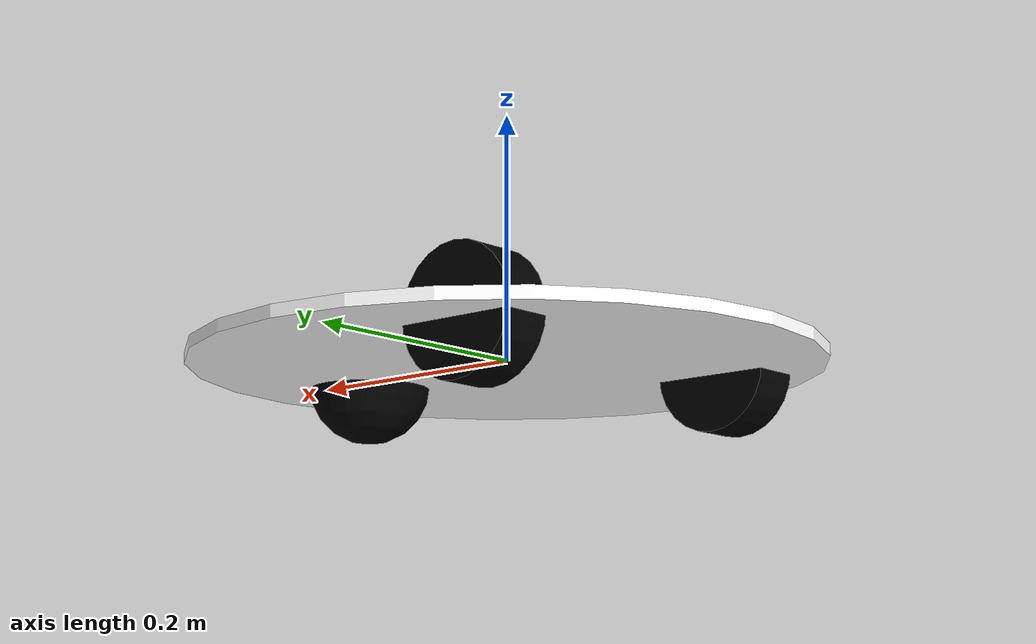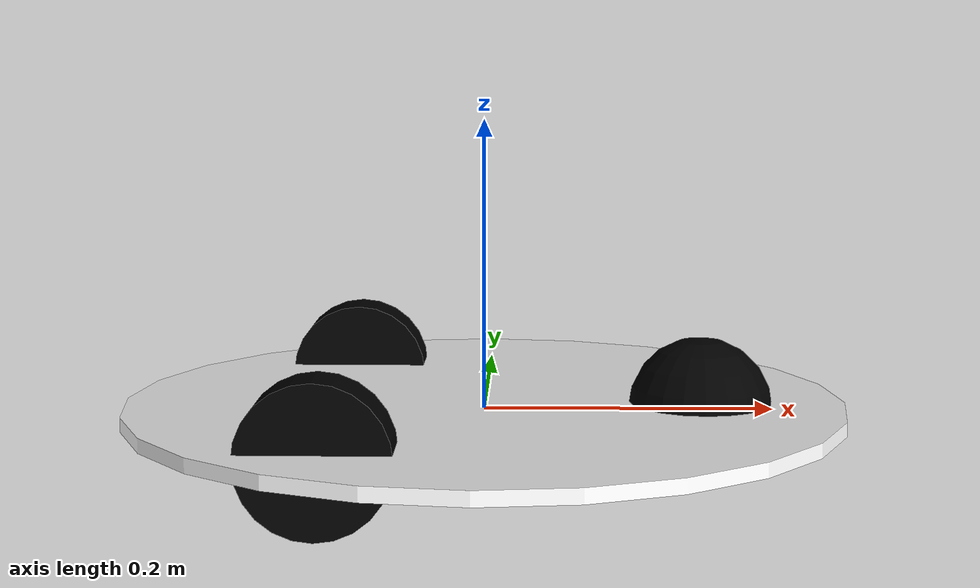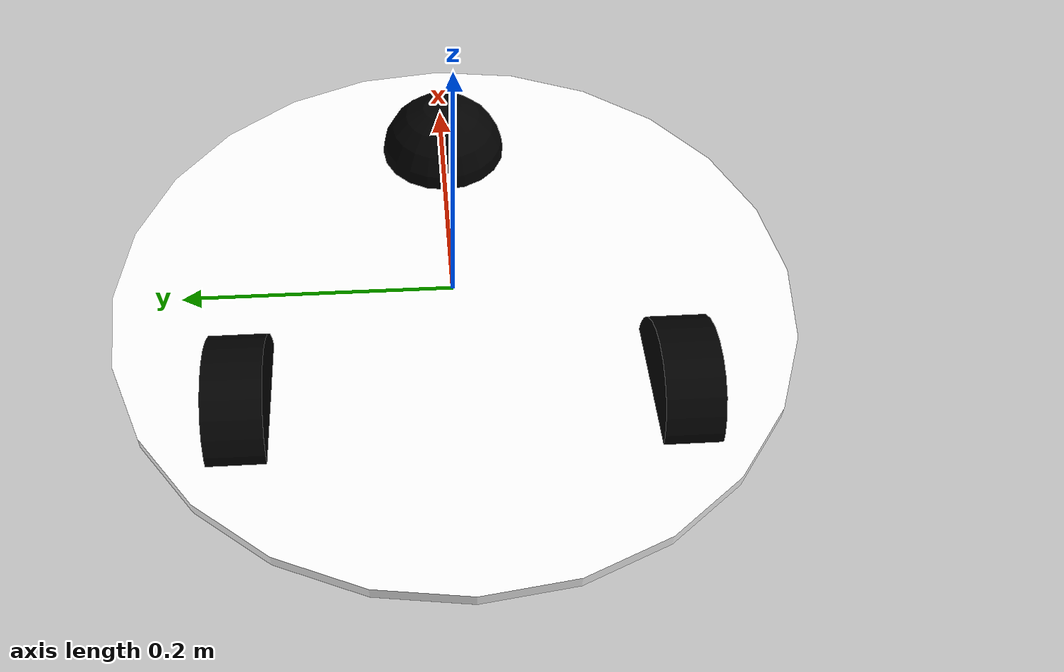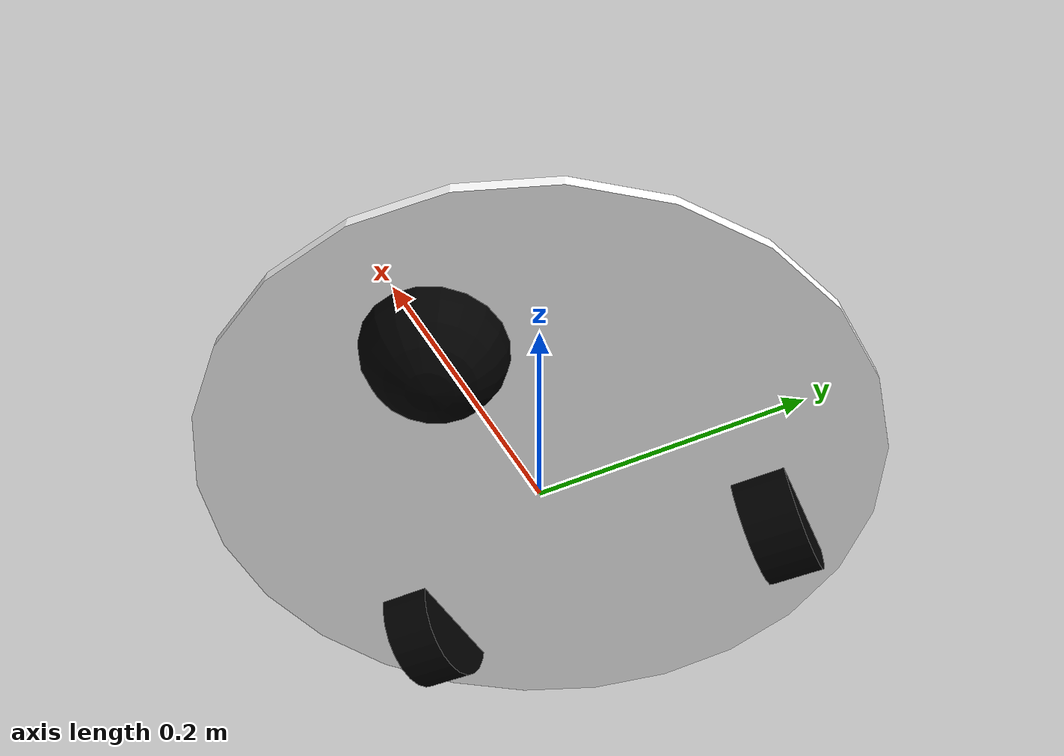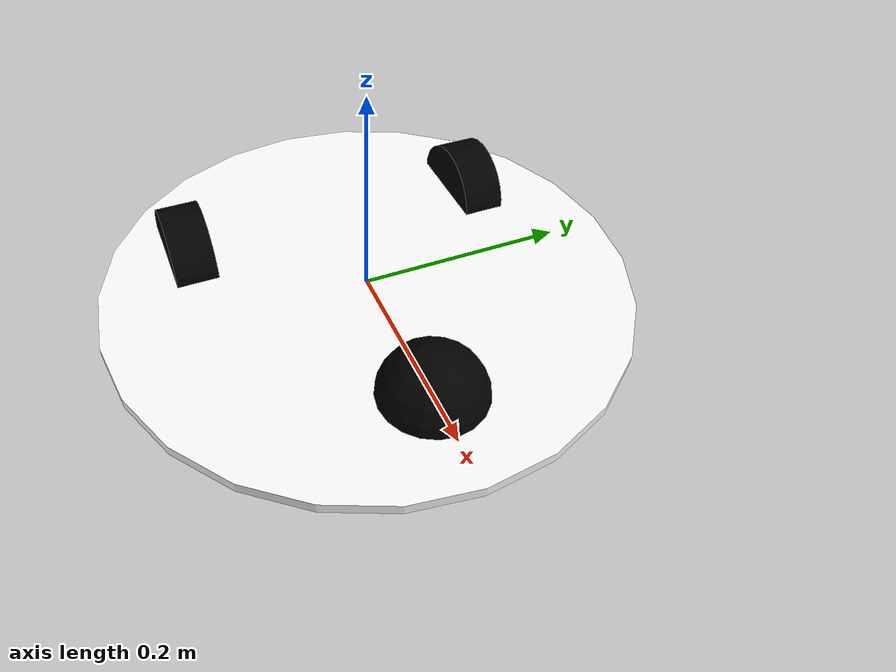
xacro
<?xml version="1.0"?>
<robot xmlns:xacro="http://www.ros.org/wiki/xacro">

    <material name="white">
        <color rgba="1 1 1 1"/>
    </material>
    <material name="black">
        <color rgba="0 0 0 1"/>
    </material>
    <!-- BASE LINK -->
    <link name="base_link">

    </link>
    <!-- CHASSIS LINK -->

    <joint name="chassis_joint" type="fixed">
        <parent link="base_link"/>
        <child link="chassis"/>
        <origin xyz="-0.1 0 0"/>
    </joint>

    <link name="chassis">
        <visual>
            <origin xyz="0.1 0 0"/>
            <geometry>
                <cylinder radius="0.25" length="0.01"/>
            </geometry>
            <material name="white"/>
        </visual>
        <collision>
            <origin xyz="0.1 0 0"/>
            <geometry>
                <cylinder radius="0.25" length="0.01"/>
            </geometry>
        </collision>
    </link>

    <!-- LEFT WHEEL LINK -->

    <joint name="left_wheel_joint" type="continuous">
        <parent link="chassis"/>
        <child link="left_wheel"/>
        <origin xyz="0 0.15 0" rpy="-${pi/2} 0 0"/>
        <axis xyz="0 0 1"/>
    </joint>

    <link name="left_wheel">
        <visual>
            <geometry>
                <cylinder radius="0.05" length="0.04"/>
            </geometry>
            <material name="black"/>
        </visual>
        <collision>
            <geometry>
                <cylinder radius="0.05" length="0.04"/>
            </geometry>
        </collision>
    </link>

    <!-- RIGHT WHEEL LINK -->

    <joint name="right_wheel_joint" type="continuous">
        <parent link="chassis"/>
        <child link="right_wheel"/>
        <origin xyz="0 -0.15 0" rpy="${pi/2} 0 0"/>
        <axis xyz="0 0 -1"/>
    </joint>

    <link name="right_wheel">
        <visual>
            <geometry>
                <cylinder radius="0.05" length="0.04"/>
            </geometry>
            <material name="black"/>
        </visual>
        <collision>
            <geometry>
                <cylinder radius="0.05" length="0.04"/>
            </geometry>
        </collision>
    </link>

    <!-- CASTER WHEEL LINK-->

    <joint name="caster_wheel_joint" type="fixed">
        <parent link="base_link"/>
        <child link="caster_wheel"/>
        <origin xyz="0.15 0 0"/>
    </joint>

    <link name="caster_wheel">
        <visual>
            <geometry>
                <sphere radius="0.05"/>
            </geometry>
            <material name="black"/>
        </visual>
        <collision>
            <geometry>
                <sphere radius="0.05"/>
            </geometry>
        </collision>
    </link>

</robot>
